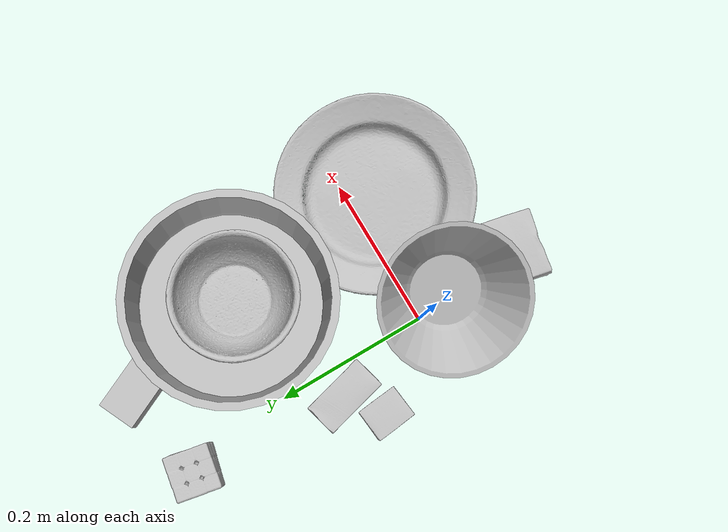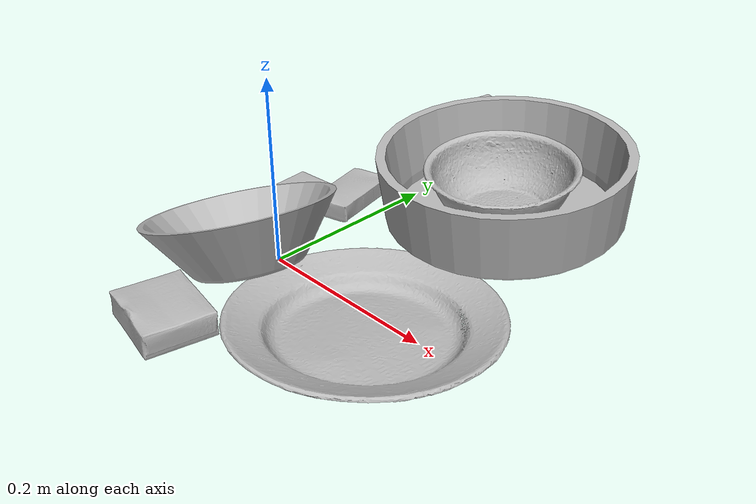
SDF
<sdf version="1.4">
  <world name="default">
    <light name="light1" type="point">
      <pose>0 0 1 0 0 0</pose>
      <diffuse>3 3 3 1</diffuse>
      <specular>3 3 3 1</specular>
    </light>
    <light name="light2" type="point">
      <pose>0 0.5 2 0 0 0</pose>
      <diffuse>1 1 1 1</diffuse>
      <specular>1 1 1 1</specular>
    </light>
    <light name="light3" type="point">
      <pose>0 0.5 2 0 0 0</pose>
      <diffuse>3 3 3 1</diffuse>
      <specular>3 3 3 1</specular>
    </light>
    <scene>
      <ambient>0.7 0.7 0.7</ambient>
    </scene>
    <model name="box1">
      <link name="link_box1">
        <collision name="default">
          <geometry>
            <mesh>
              <uri>model://jenga/collision_meshes/collision.obj</uri>
              <scale>1.0 1.0 1.0</scale>
            </mesh>
          </geometry>
          <surface>
            <friction>
              <ode>
                <mu>0.5</mu>
                <mu2>0.5</mu2>
              </ode>
            </friction>
          <contact>
        <ode>
            <max_vel>0</max_vel>
            <min_depth>0.0001</min_depth>
            <kp>1e8</kp>
        </ode>
    </contact></surface>
        </collision>
        <visual name="default">
          <geometry>
            <mesh>
              <uri>model://jenga/visual_meshes/visual.dae</uri>
              <scale>1.0 1.0 1.0</scale>
            </mesh>
          </geometry>
        </visual>
        <inertial>
          <mass>0.2830650806427002</mass>
          <pose>-2.502855807051674e-07 -0.00010250010382151231 -4.0923401684267446e-05 0.0 -7.34215461761844e-07 0.0</pose>
          <inertia>
            <ixx>7.833097e-05</ixx>
            <iyy>0.0005307686</iyy>
            <izz>0.0005666406</izz>
            <ixy>0</ixy>
            <ixz>0</ixz>
            <iyz>0</iyz>
          </inertia>
        </inertial>
      </link>
      <pose>0.11808454990386963 0.3221099078655243 0.015016364865005016 -0.0007186744512999358 -1.7737265437480474e-05 2.009025308006691</pose>
    </model>
    <model name="box11">
      <link name="link_box11">
        <collision name="default">
          <geometry>
            <mesh>
              <uri>model://cracker_box/collision_meshes/collision.obj</uri>
              <scale>0.25 0.25 0.25</scale>
            </mesh>
          </geometry>
          <surface>
            <friction>
              <ode>
                <mu>0.5</mu>
                <mu2>0.5</mu2>
              </ode>
            </friction>
          <contact>
        <ode>
            <max_vel>0</max_vel>
            <min_depth>0.0001</min_depth>
            <kp>1e8</kp>
        </ode>
    </contact></surface>
        </collision>
        <visual name="default">
          <geometry>
            <mesh>
              <uri>model://cracker_box/visual_meshes/visual.dae</uri>
              <scale>0.25 0.25 0.25</scale>
            </mesh>
          </geometry>
        </visual>
        <inertial>
          <mass>0.04137800261378288</mass>
          <pose>0.00023660347505938262 6.358561950037256e-05 -0.0004257383698131889 -0.00031620748486547713 -0.011106488669102847 0.002546795699546287</pose>
          <inertia>
            <ixx>6.577948e-06</ixx>
            <iyy>1.0861484e-05</iyy>
            <izz>1.5500336e-05</izz>
            <ixy>0</ixy>
            <ixz>0</ixz>
            <iyz>0</iyz>
          </inertia>
        </inertial>
      </link>
      <pose>0.12400002777576447 0.17203211784362793 0.009120449423789978 -0.01178802041591679 -0.007367070481438386 -2.353678232203285</pose>
    </model>
    <model name="box2">
      <link name="link_box2">
        <collision name="default">
          <geometry>
            <mesh>
              <uri>model://gelatin_box/collision_meshes/collision.obj</uri>
              <scale>1.0 1.0 1.0</scale>
            </mesh>
          </geometry>
          <surface>
            <friction>
              <ode>
                <mu>0.5</mu>
                <mu2>0.5</mu2>
              </ode>
            </friction>
          <contact>
        <ode>
            <max_vel>0</max_vel>
            <min_depth>0.0001</min_depth>
            <kp>1e8</kp>
        </ode>
    </contact></surface>
        </collision>
        <visual name="default">
          <geometry>
            <mesh>
              <uri>model://gelatin_box/visual_meshes/visual.dae</uri>
              <scale>1.0 1.0 1.0</scale>
            </mesh>
          </geometry>
        </visual>
        <inertial>
          <mass>0.22900472581386566</mass>
          <pose>0.000431961816502735 0.00011156871914863586 -0.0003640321083366871 -0.001050372089182411 -0.004755818223717792 0.016440559471606643</pose>
          <inertia>
            <ixx>0.00016165864</ixx>
            <iyy>0.00011547193</iyy>
            <izz>0.00024608054</izz>
            <ixy>0</ixy>
            <ixz>0</ixz>
            <iyz>0</iyz>
          </inertia>
        </inertial>
      </link>
      <pose>0.014829905703663826 -0.1479630172252655 0.015168221667408943 0.005602313493085091 -0.007286883435754146 -1.7872889561141132</pose>
    </model>
    <model name="box21">
      <link name="link_box21">
        <collision name="default">
          <geometry>
            <mesh>
              <uri>model://sugar_box/collision_meshes/collision.obj</uri>
              <scale>0.5 0.5 0.5</scale>
            </mesh>
          </geometry>
          <surface>
            <friction>
              <ode>
                <mu>0.5</mu>
                <mu2>0.5</mu2>
              </ode>
            </friction>
          <contact>
        <ode>
            <max_vel>0</max_vel>
            <min_depth>0.0001</min_depth>
            <kp>1e8</kp>
        </ode>
    </contact></surface>
        </collision>
        <visual name="default">
          <geometry>
            <mesh>
              <uri>model://sugar_box/visual_meshes/visual.dae</uri>
              <scale>0.5 0.5 0.5</scale>
            </mesh>
          </geometry>
        </visual>
        <inertial>
          <mass>0.12271630764007568</mass>
          <pose>0.0005171863595023751 1.924554817378521e-05 -0.00018182404164690524 -0.00040462595111886014 0.0010506636380741379 0.0026153785562511135</pose>
          <inertia>
            <ixx>2.5561721e-05</ixx>
            <iyy>8.262075e-05</iyy>
            <izz>9.890688e-05</izz>
            <ixy>0</ixy>
            <ixz>0</ixz>
            <iyz>0</iyz>
          </inertia>
        </inertial>
      </link>
      <pose>-0.036302343010902405 0.13221006095409393 0.011399301700294018 0.0007746494927846053 -0.02343306584156513 -1.3226641519997295</pose>
    </model>
    <model name="box3">
      <link name="link_box3">
        <collision name="default">
          <geometry>
            <mesh>
              <uri>model://rubiks_cube/collision_meshes/collision.obj</uri>
              <scale>1.0 1.0 1.0</scale>
            </mesh>
          </geometry>
          <surface>
            <friction>
              <ode>
                <mu>0.5</mu>
                <mu2>0.5</mu2>
              </ode>
            </friction>
          <contact>
        <ode>
            <max_vel>0</max_vel>
            <min_depth>0.0001</min_depth>
            <kp>1e8</kp>
        </ode>
    </contact></surface>
        </collision>
        <visual name="default">
          <geometry>
            <mesh>
              <uri>model://rubiks_cube/visual_meshes/visual.dae</uri>
              <scale>1.0 1.0 1.0</scale>
            </mesh>
          </geometry>
        </visual>
        <inertial>
          <mass>0.16665811836719513</mass>
          <pose>2.6721039830590598e-05 5.256966323941015e-05 -7.264316082000732e-06 -0.05467166844566422 -0.0981397083583286 -0.034457090447706985</pose>
          <inertia>
            <ixx>9.20898e-05</ixx>
            <iyy>9.166034e-05</iyy>
            <izz>9.285292e-05</izz>
            <ixy>0</ixy>
            <ixz>0</ixz>
            <iyz>0</iyz>
          </inertia>
        </inertial>
      </link>
      <pose>-0.02185126207768917 0.33846426010131836 0.028678979724645615 -3.001059008877467e-06 -8.180445251708961e-07 -0.1894644942532409</pose>
    </model>
    <model name="box31">
      <link name="link_box31">
        <collision name="default">
          <geometry>
            <mesh>
              <uri>model://pudding_box/collision_meshes/collision.obj</uri>
              <scale>0.5 0.5 0.5</scale>
            </mesh>
          </geometry>
          <surface>
            <friction>
              <ode>
                <mu>0.5</mu>
                <mu2>0.5</mu2>
              </ode>
            </friction>
          <contact>
        <ode>
            <max_vel>0</max_vel>
            <min_depth>0.0001</min_depth>
            <kp>1e8</kp>
        </ode>
    </contact></surface>
        </collision>
        <visual name="default">
          <geometry>
            <mesh>
              <uri>model://pudding_box/visual_meshes/visual.dae</uri>
              <scale>0.5 0.5 0.5</scale>
            </mesh>
          </geometry>
        </visual>
        <inertial>
          <mass>0.023591291159391403</mass>
          <pose>0.00024474109522998333 0.00040339428232982755 -0.0002594413817860186 0.00521310040348307 -0.006603797312523218 0.020079827030686108</pose>
          <inertia>
            <ixx>6.667184e-06</ixx>
            <iyy>4.4857293e-06</iyy>
            <izz>9.845841e-06</izz>
            <ixy>0</ixy>
            <ixz>0</ixz>
            <iyz>0</iyz>
          </inertia>
        </inertial>
      </link>
      <pose>-0.0814516544342041 0.09769674390554428 0.009862903505563736 0.022348624825445598 -0.011391672816237708 -3.0329743990483404</pose>
    </model>
    <model name="plate1">
      <link name="link_plate1">
        <collision name="default">
          <geometry>
            <mesh>
              <uri>model://plate/collision_meshes/collision.obj</uri>
              <scale>1.0 1.0 1.0</scale>
            </mesh>
          </geometry>
          <surface>
            <friction>
              <ode>
                <mu>0.5</mu>
                <mu2>0.5</mu2>
              </ode>
            </friction>
          <contact>
        <ode>
            <max_vel>0</max_vel>
            <min_depth>0.0001</min_depth>
            <kp>1e8</kp>
        </ode>
    </contact></surface>
        </collision>
        <visual name="default">
          <geometry>
            <mesh>
              <uri>model://plate/visual_meshes/visual.dae</uri>
              <scale>1.0 1.0 1.0</scale>
            </mesh>
          </geometry>
        </visual>
        <inertial>
          <mass>0.2114637792110443</mass>
          <pose>-0.0006044656038284302 0.0002782588708214462 -0.0010561993112787604 0.002218744002621918 -0.003225513006599694 0.45262307488796183</pose>
          <inertia>
            <ixx>0.0009892316</ixx>
            <iyy>0.0009797702</iyy>
            <izz>0.0019347895</izz>
            <ixy>0</ixy>
            <ixz>0</ixz>
            <iyz>0</iyz>
          </inertia>
        </inertial>
      </link>
      <pose>0.165660560131073 -0.032123319804668427 0.018799198791384697 0.0035413689910439687 -0.07215737523466421 -1.1610458244965098</pose>
    </model>
    <model name="bowl1">
      <link name="link_bowl1">
        <collision name="default">
          <geometry>
            <mesh>
              <uri>model://bowl_a/collision_meshes/collision.obj</uri>
              <scale>1.0 1.0 1.0</scale>
            </mesh>
          </geometry>
          <surface>
            <friction>
              <ode>
                <mu>0.5</mu>
                <mu2>0.5</mu2>
              </ode>
            </friction>
          <contact>
        <ode>
            <max_vel>0</max_vel>
            <min_depth>0.0001</min_depth>
            <kp>1e8</kp>
        </ode>
    </contact></surface>
        </collision>
        <visual name="default">
          <geometry>
            <mesh>
              <uri>model://bowl_a/visual_meshes/visual.dae</uri>
              <scale>1.0 1.0 1.0</scale>
            </mesh>
          </geometry>
        </visual>
        <inertial>
          <mass>0.48499906063079834</mass>
          <pose>0.00027867438620887697 4.731262743007392e-05 -0.0013765298062935472 -0.0009805334386135593 -0.0010938262367740986 -0.19123808511586568</pose>
          <inertia>
            <ixx>0.0013808149</ixx>
            <iyy>0.0013892918</iyy>
            <izz>0.0024558324</izz>
            <ixy>0</ixy>
            <ixz>0</ixz>
            <iyz>0</iyz>
          </inertia>
        </inertial>
      </link>
      <pose>0.004155121278017759 -0.04354838654398918 0.048124779015779495 0.35182561145676655 0.09072350439810432 -2.066918498321224</pose>
    </model>
    <model name="plate2">
      <link name="link_plate2">
        <collision name="default">
          <geometry>
            <mesh>
              <uri>model://pan_tefal/collision_meshes/collision.obj</uri>
              <scale>1.0 1.0 1.0</scale>
            </mesh>
          </geometry>
          <surface>
            <friction>
              <ode>
                <mu>0.5</mu>
                <mu2>0.5</mu2>
              </ode>
            </friction>
          <contact>
        <ode>
            <max_vel>0</max_vel>
            <min_depth>0.0001</min_depth>
            <kp>1e8</kp>
        </ode>
    </contact></surface>
        </collision>
        <visual name="default">
          <geometry>
            <mesh>
              <uri>model://pan_tefal/visual_meshes/visual.dae</uri>
              <scale>1.0 1.0 1.0</scale>
            </mesh>
          </geometry>
        </visual>
        <inertial>
          <mass>1.510846495628357</mass>
          <pose>-0.00018002149590756744 3.279069278505631e-05 -0.008514934219419956 0.0008190286460061649 -0.00033014112223844094 -0.3318560039733936</pose>
          <inertia>
            <ixx>0.010429303</ixx>
            <iyy>0.010496541</iyy>
            <izz>0.01919834</izz>
            <ixy>0</ixy>
            <ixz>0</ixz>
            <iyz>0</iyz>
          </inertia>
        </inertial>
      </link>
      <pose>0.1333388239145279 0.19543780386447906 0.06586083769798279 -0.04497012134152487 -0.005368938738164274 2.727606569961292</pose>
    </model>
    <model name="bowl2">
      <link name="link_bowl2">
        <collision name="default">
          <geometry>
            <mesh>
              <uri>model://bowl/collision_meshes/collision.obj</uri>
              <scale>1.0 1.0 1.0</scale>
            </mesh>
          </geometry>
          <surface>
            <friction>
              <ode>
                <mu>0.5</mu>
                <mu2>0.5</mu2>
              </ode>
            </friction>
          <contact>
        <ode>
            <max_vel>0</max_vel>
            <min_depth>0.0001</min_depth>
            <kp>1e8</kp>
        </ode>
    </contact></surface>
        </collision>
        <visual name="default">
          <geometry>
            <mesh>
              <uri>model://bowl/visual_meshes/visual.dae</uri>
              <scale>1.0 1.0 1.0</scale>
            </mesh>
          </geometry>
        </visual>
        <inertial>
          <mass>0.12714597582817078</mass>
          <pose>0.0002044505235971883 -0.0010302012087777257 -0.0008042659610509872 -0.015764101160635133 0.01454679544325816 0.7140405339594252</pose>
          <inertia>
            <ixx>0.0002920644</ixx>
            <iyy>0.00028553858</iyy>
            <izz>0.0004913528</izz>
            <ixy>0</ixy>
            <ixz>0</ixz>
            <iyz>0</iyz>
          </inertia>
        </inertial>
      </link>
      <pose>0.13509327173233032 0.18894757330417633 0.06307365000247955 -0.008290074824051254 0.04649885761959378 -2.0213588936393188</pose>
    </model>
  <physics type="ode">
      <max_contacts>50</max_contacts>
      <ode>
        <solver>
          <type>quick</type>
          <iters>75</iters>
        </solver>
        <constraints>
          <contact_max_correcting_vel>0</contact_max_correcting_vel>
          <contact_surface_layer>0</contact_surface_layer>
        </constraints>
      </ode>
    </physics></world>
</sdf>
